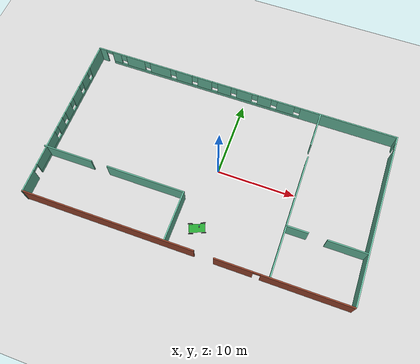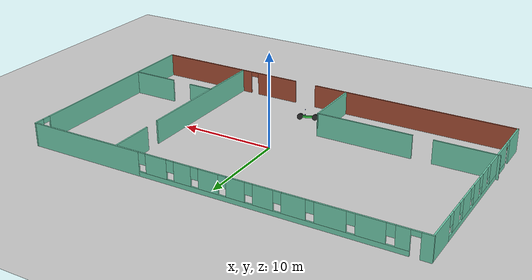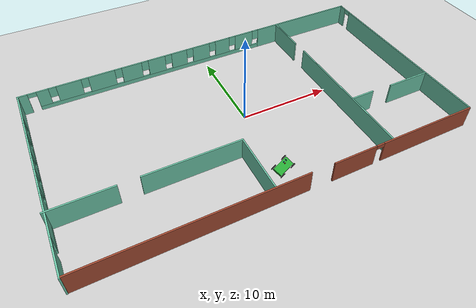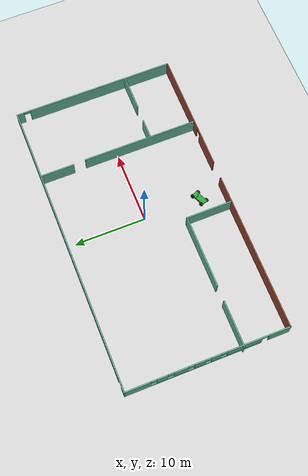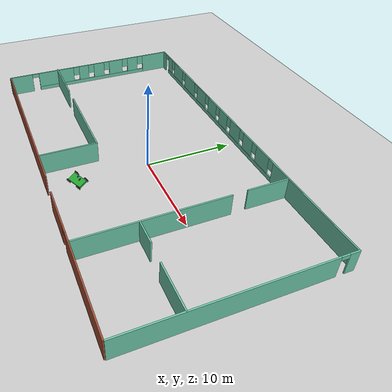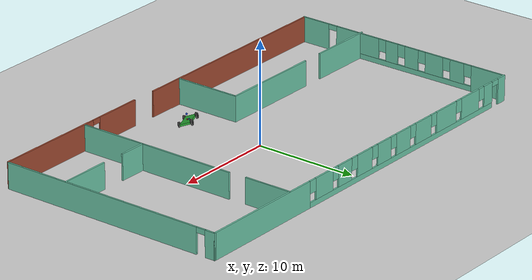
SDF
<sdf version="1.6">
 <world name="default">
  <model name="ground_plane">
   <static>1</static>
   <link name="link">
    <collision name="collision">
     <geometry><plane><normal>0 0 1</normal><size>100 100</size></plane></geometry>
     <surface>
      <contact><collide_bitmask>65535</collide_bitmask></contact>
      <friction><ode><mu>100</mu><mu2>50</mu2></ode></friction>
     </surface>
    </collision>
    <visual name="visual">
     <cast_shadows>0</cast_shadows>
     <geometry><plane><normal>0 0 1</normal><size>100 100</size></plane></geometry>
     <material>
      <script><uri>file://media/materials/scripts/gazebo.material</uri><name>Gazebo/Grey</name></script>
     </material>
    </visual>
   </link>
  </model>
  <model name="office">
   <pose>-0.6589 -0.171152 0 0 -0 0</pose>
   <link name="Wall_0">
    <pose>-20.5476 -0.068828 0 0 0 -1.5708</pose>
    <visual name="Wall_0_Visual_0">
     <pose>-9.5312 0 1.25 0 -0 0</pose>
     <geometry><box><size>3.4376 0.15 2.5</size></box></geometry>
     <material>
      <script><uri>file://media/materials/scripts/gazebo.material</uri><name>Gazebo/Grey</name></script>
      <ambient>0.435294 0.796078 0.67451 1</ambient>
     </material>
     <meta><layer>0</layer></meta>
    </visual>
    <collision name="Wall_0_Collision_0">
     <geometry><box><size>3.4376 0.15 2.5</size></box></geometry>
     <pose>-9.5312 0 1.25 0 -0 0</pose>
    </collision>
    <visual name="Wall_0_Visual_1">
     <pose>9.76077 0 1.25 0 -0 0</pose>
     <geometry><box><size>2.97847 0.15 2.5</size></box></geometry>
     <material>
      <script><uri>file://media/materials/scripts/gazebo.material</uri><name>Gazebo/Grey</name></script>
      <ambient>0.435294 0.796078 0.67451 1</ambient>
     </material>
     <meta><layer>0</layer></meta>
    </visual>
    <collision name="Wall_0_Collision_1">
     <geometry><box><size>2.97847 0.15 2.5</size></box></geometry>
     <pose>9.76077 0 1.25 0 -0 0</pose>
    </collision>
    <visual name="Wall_0_Visual_2">
     <pose>-0.220435 0 0.25 0 -0 0</pose>
     <geometry><box><size>15.1839 0.15 0.5</size></box></geometry>
     <material>
      <script><uri>file://media/materials/scripts/gazebo.material</uri><name>Gazebo/Grey</name></script>
      <ambient>0.435294 0.796078 0.67451 1</ambient>
     </material>
     <meta><layer>0</layer></meta>
    </visual>
    <collision name="Wall_0_Collision_2">
     <geometry><box><size>15.1839 0.15 0.5</size></box></geometry>
     <pose>-0.220435 0 0.25 0 -0 0</pose>
    </collision>
    <visual name="Wall_0_Visual_3">
     <pose>-6.24233 0 1.5 0 -0 0</pose>
     <geometry><box><size>1.54015 0.15 2</size></box></geometry>
     <material>
      <script><uri>file://media/materials/scripts/gazebo.material</uri><name>Gazebo/Grey</name></script>
      <ambient>0.435294 0.796078 0.67451 1</ambient>
     </material>
     <meta><layer>0</layer></meta>
    </visual>
    <collision name="Wall_0_Collision_3">
     <geometry><box><size>1.54015 0.15 2</size></box></geometry>
     <pose>-6.24233 0 1.5 0 -0 0</pose>
    </collision>
    <visual name="Wall_0_Visual_4">
     <pose>-3.69569 0 1.5 0 -0 0</pose>
     <geometry><box><size>1.95312 0.15 2</size></box></geometry>
     <material>
      <script><uri>file://media/materials/scripts/gazebo.material</uri><name>Gazebo/Grey</name></script>
      <ambient>0.435294 0.796078 0.67451 1</ambient>
     </material>
     <meta><layer>0</layer></meta>
    </visual>
    <collision name="Wall_0_Collision_4">
     <geometry><box><size>1.95312 0.15 2</size></box></geometry>
     <pose>-3.69569 0 1.5 0 -0 0</pose>
    </collision>
    <visual name="Wall_0_Visual_5">
     <pose>-1.17199 0 1.5 0 -0 0</pose>
     <geometry><box><size>1.49427 0.15 2</size></box></geometry>
     <material>
      <script><uri>file://media/materials/scripts/gazebo.material</uri><name>Gazebo/Grey</name></script>
      <ambient>0.435294 0.796078 0.67451 1</ambient>
     </material>
     <meta><layer>0</layer></meta>
    </visual>
    <collision name="Wall_0_Collision_5">
     <geometry><box><size>1.49427 0.15 2</size></box></geometry>
     <pose>-1.17199 0 1.5 0 -0 0</pose>
    </collision>
    <visual name="Wall_0_Visual_6">
     <pose>1.05344 0 1.5 0 -0 0</pose>
     <geometry><box><size>1.35661 0.15 2</size></box></geometry>
     <material>
      <script><uri>file://media/materials/scripts/gazebo.material</uri><name>Gazebo/Grey</name></script>
      <ambient>0.435294 0.796078 0.67451 1</ambient>
     </material>
     <meta><layer>0</layer></meta>
    </visual>
    <collision name="Wall_0_Collision_6">
     <geometry><box><size>1.35661 0.15 2</size></box></geometry>
     <pose>1.05344 0 1.5 0 -0 0</pose>
    </collision>
    <visual name="Wall_0_Visual_7">
     <pose>4.95164 0 1.5 0 -0 0</pose>
     <geometry><box><size>4.83978 0.15 2</size></box></geometry>
     <material>
      <script><uri>file://media/materials/scripts/gazebo.material</uri><name>Gazebo/Grey</name></script>
      <ambient>0.435294 0.796078 0.67451 1</ambient>
     </material>
     <meta><layer>0</layer></meta>
    </visual>
    <collision name="Wall_0_Collision_7">
     <geometry><box><size>4.83978 0.15 2</size></box></geometry>
     <pose>4.95164 0 1.5 0 -0 0</pose>
    </collision>
    <visual name="Wall_0_Visual_8">
     <pose>-7.4124 0 1.9 0 -0 0</pose>
     <geometry><box><size>0.8 0.15 1.2</size></box></geometry>
     <material>
      <script><uri>file://media/materials/scripts/gazebo.material</uri><name>Gazebo/Grey</name></script>
      <ambient>0.435294 0.796078 0.67451 1</ambient>
     </material>
     <meta><layer>0</layer></meta>
    </visual>
    <collision name="Wall_0_Collision_8">
     <geometry><box><size>0.8 0.15 1.2</size></box></geometry>
     <pose>-7.4124 0 1.9 0 -0 0</pose>
    </collision>
    <visual name="Wall_0_Visual_9">
     <pose>-5.07225 0 1.9 0 -0 0</pose>
     <geometry><box><size>0.8 0.15 1.2</size></box></geometry>
     <material>
      <script><uri>file://media/materials/scripts/gazebo.material</uri><name>Gazebo/Grey</name></script>
      <ambient>0.435294 0.796078 0.67451 1</ambient>
     </material>
     <meta><layer>0</layer></meta>
    </visual>
    <collision name="Wall_0_Collision_9">
     <geometry><box><size>0.8 0.15 1.2</size></box></geometry>
     <pose>-5.07225 0 1.9 0 -0 0</pose>
    </collision>
    <visual name="Wall_0_Visual_10">
     <pose>-2.31913 0 1.9 0 -0 0</pose>
     <geometry><box><size>0.8 0.15 1.2</size></box></geometry>
     <material>
      <script><uri>file://media/materials/scripts/gazebo.material</uri><name>Gazebo/Grey</name></script>
      <ambient>0.435294 0.796078 0.67451 1</ambient>
     </material>
     <meta><layer>0</layer></meta>
    </visual>
    <collision name="Wall_0_Collision_10">
     <geometry><box><size>0.8 0.15 1.2</size></box></geometry>
     <pose>-2.31913 0 1.9 0 -0 0</pose>
    </collision>
    <visual name="Wall_0_Visual_11">
     <pose>-0.024862 0 1.9 0 -0 0</pose>
     <geometry><box><size>0.8 0.15 1.2</size></box></geometry>
     <material>
      <script><uri>file://media/materials/scripts/gazebo.material</uri><name>Gazebo/Grey</name></script>
      <ambient>0.435294 0.796078 0.67451 1</ambient>
     </material>
     <meta><layer>0</layer></meta>
    </visual>
    <collision name="Wall_0_Collision_11">
     <geometry><box><size>0.8 0.15 1.2</size></box></geometry>
     <pose>-0.024862 0 1.9 0 -0 0</pose>
    </collision>
    <visual name="Wall_0_Visual_12">
     <pose>2.13175 0 1.9 0 -0 0</pose>
     <geometry><box><size>0.8 0.15 1.2</size></box></geometry>
     <material>
      <script><uri>file://media/materials/scripts/gazebo.material</uri><name>Gazebo/Grey</name></script>
      <ambient>0.435294 0.796078 0.67451 1</ambient>
     </material>
     <meta><layer>0</layer></meta>
    </visual>
    <collision name="Wall_0_Collision_12">
     <geometry><box><size>0.8 0.15 1.2</size></box></geometry>
     <pose>2.13175 0 1.9 0 -0 0</pose>
    </collision>
    <visual name="Wall_0_Visual_13">
     <pose>7.82153 0 2.25 0 -0 0</pose>
     <geometry><box><size>0.9 0.15 0.5</size></box></geometry>
     <material>
      <script><uri>file://media/materials/scripts/gazebo.material</uri><name>Gazebo/Grey</name></script>
      <ambient>0.435294 0.796078 0.67451 1</ambient>
     </material>
     <meta><layer>0</layer></meta>
    </visual>
    <collision name="Wall_0_Collision_13">
     <geometry><box><size>0.9 0.15 0.5</size></box></geometry>
     <pose>7.82153 0 2.25 0 -0 0</pose>
    </collision>
   </link>
   <link name="Wall_11">
    <collision name="Wall_11_Collision">
     <geometry><box><size>5 0.15 2.5</size></box></geometry>
     <pose>0 0 1.25 0 -0 0</pose>
    </collision>
    <visual name="Wall_11_Visual">
     <pose>0 0 1.25 0 -0 0</pose>
     <geometry><box><size>5 0.15 2.5</size></box></geometry>
     <material>
      <script><uri>file://media/materials/scripts/gazebo.material</uri><name>Gazebo/Grey</name></script>
      <ambient>0.435294 0.796078 0.67451 1</ambient>
     </material>
     <meta><layer>0</layer></meta>
    </visual>
    <pose>18.3103 -4.77016 0 0 -0 0</pose>
   </link>
   <link name="Wall_13">
    <collision name="Wall_13_Collision">
     <geometry><box><size>6.5 0.15 2.5</size></box></geometry>
     <pose>0 0 1.25 0 -0 0</pose>
    </collision>
    <visual name="Wall_13_Visual">
     <pose>0 0 1.25 0 -0 0</pose>
     <geometry><box><size>6.5 0.15 2.5</size></box></geometry>
     <material>
      <script><uri>file://media/materials/scripts/gazebo.material</uri><name>Gazebo/Grey</name></script>
      <ambient>0.435294 0.796078 0.67451 1</ambient>
     </material>
     <meta><layer>0</layer></meta>
    </visual>
    <pose>-17.6021 -4.77016 0 0 -0 0</pose>
   </link>
   <link name="Wall_15">
    <collision name="Wall_15_Collision">
     <geometry><box><size>10.25 0.15 2.5</size></box></geometry>
     <pose>0 0 1.25 0 -0 0</pose>
    </collision>
    <visual name="Wall_15_Visual">
     <pose>0 0 1.25 0 -0 0</pose>
     <geometry><box><size>10.25 0.15 2.5</size></box></geometry>
     <material>
      <script><uri>file://media/materials/scripts/gazebo.material</uri><name>Gazebo/Grey</name></script>
      <ambient>0.435294 0.796078 0.67451 1</ambient>
     </material>
     <meta><layer>0</layer></meta>
    </visual>
    <pose>-7.1465 -4.77016 0 0 -0 0</pose>
   </link>
   <link name="Wall_16">
    <collision name="Wall_16_Collision">
     <geometry><box><size>6.5 0.15 2.5</size></box></geometry>
     <pose>0 0 1.25 0 -0 0</pose>
    </collision>
    <visual name="Wall_16_Visual">
     <pose>0 0 1.25 0 -0 0</pose>
     <geometry><box><size>6.5 0.15 2.5</size></box></geometry>
     <material>
      <script><uri>file://media/materials/scripts/gazebo.material</uri><name>Gazebo/Grey</name></script>
      <ambient>0.435294 0.796078 0.67451 1</ambient>
     </material>
     <meta><layer>0</layer></meta>
    </visual>
    <pose>-2.0965 -7.94516 0 0 0 -1.5708</pose>
   </link>
   <link name="Wall_18">
    <collision name="Wall_18_Collision">
     <geometry><box><size>22.25 0.15 2.5</size></box></geometry>
     <pose>0 0 1.25 0 -0 0</pose>
    </collision>
    <visual name="Wall_18_Visual">
     <pose>0 0 1.25 0 -0 0</pose>
     <geometry><box><size>22.25 0.15 2.5</size></box></geometry>
     <material>
      <script><uri>file://media/materials/scripts/gazebo.material</uri><name>Gazebo/Bricks</name></script>
      <ambient>1 1 1 1</ambient>
     </material>
     <meta><layer>0</layer></meta>
    </visual>
    <pose>-9.49763 -11.1979 0 0 -0 0</pose>
   </link>
   <link name="Wall_2">
    <pose>20.7771 0.068828 0 0 -0 1.5708</pose>
    <visual name="Wall_2_Visual_0">
     <pose>-0.973723 0 1.25 0 -0 0</pose>
     <geometry><box><size>20.5526 0.15 2.5</size></box></geometry>
     <material>
      <script><uri>file://media/materials/scripts/gazebo.material</uri><name>Gazebo/Grey</name></script>
      <ambient>0.435294 0.796078 0.67451 1</ambient>
     </material>
     <meta><layer>0</layer></meta>
    </visual>
    <collision name="Wall_2_Collision_0">
     <geometry><box><size>20.5526 0.15 2.5</size></box></geometry>
     <pose>-0.973723 0 1.25 0 -0 0</pose>
    </collision>
    <visual name="Wall_2_Visual_1">
     <pose>10.7263 0 1.25 0 -0 0</pose>
     <geometry><box><size>1.04745 0.15 2.5</size></box></geometry>
     <material>
      <script><uri>file://media/materials/scripts/gazebo.material</uri><name>Gazebo/Grey</name></script>
      <ambient>0.435294 0.796078 0.67451 1</ambient>
     </material>
     <meta><layer>0</layer></meta>
    </visual>
    <collision name="Wall_2_Collision_1">
     <geometry><box><size>1.04745 0.15 2.5</size></box></geometry>
     <pose>10.7263 0 1.25 0 -0 0</pose>
    </collision>
    <visual name="Wall_2_Visual_2">
     <pose>9.75255 0 2.25 0 -0 0</pose>
     <geometry><box><size>0.9 0.15 0.5</size></box></geometry>
     <material>
      <script><uri>file://media/materials/scripts/gazebo.material</uri><name>Gazebo/Grey</name></script>
      <ambient>0.435294 0.796078 0.67451 1</ambient>
     </material>
     <meta><layer>0</layer></meta>
    </visual>
    <collision name="Wall_2_Collision_2">
     <geometry><box><size>0.9 0.15 0.5</size></box></geometry>
     <pose>9.75255 0 2.25 0 -0 0</pose>
    </collision>
   </link>
   <link name="Wall_22">
    <pose>12.4086 -11.24 0 0 -0 0</pose>
    <visual name="Wall_22_Visual_0">
     <pose>-5.9779 0 1.25 0 -0 0</pose>
     <geometry><box><size>4.79421 0.15 2.5</size></box></geometry>
     <material>
      <script><uri>file://media/materials/scripts/gazebo.material</uri><name>Gazebo/Bricks</name></script>
      <ambient>1 1 1 1</ambient>
     </material>
     <meta><layer>0</layer></meta>
    </visual>
    <collision name="Wall_22_Collision_0">
     <geometry><box><size>4.79421 0.15 2.5</size></box></geometry>
     <pose>-5.9779 0 1.25 0 -0 0</pose>
    </collision>
    <visual name="Wall_22_Visual_1">
     <pose>2.8471 0 1.25 0 -0 0</pose>
     <geometry><box><size>11.0558 0.15 2.5</size></box></geometry>
     <material>
      <script><uri>file://media/materials/scripts/gazebo.material</uri><name>Gazebo/Bricks</name></script>
      <ambient>1 1 1 1</ambient>
     </material>
     <meta><layer>0</layer></meta>
    </visual>
    <collision name="Wall_22_Collision_1">
     <geometry><box><size>11.0558 0.15 2.5</size></box></geometry>
     <pose>2.8471 0 1.25 0 -0 0</pose>
    </collision>
    <visual name="Wall_22_Visual_2">
     <pose>-3.13079 0 2.25 0 -0 0</pose>
     <geometry><box><size>0.9 0.15 0.5</size></box></geometry>
     <material>
      <script><uri>file://media/materials/scripts/gazebo.material</uri><name>Gazebo/Bricks</name></script>
      <ambient>1 1 1 1</ambient>
     </material>
     <meta><layer>0</layer></meta>
    </visual>
    <collision name="Wall_22_Collision_2">
     <geometry><box><size>0.9 0.15 0.5</size></box></geometry>
     <pose>-3.13079 0 2.25 0 -0 0</pose>
    </collision>
   </link>
   <link name="Wall_3">
    <pose>0.102057 11.2438 0 0 -0 3.14159</pose>
    <visual name="Wall_3_Visual_0">
     <pose>-14.3599 0 1.25 0 -0 0</pose>
     <geometry><box><size>12.7802 0.15 2.5</size></box></geometry>
     <material>
      <script><uri>file://media/materials/scripts/gazebo.material</uri><name>Gazebo/Grey</name></script>
      <ambient>0.435294 0.796078 0.67451 1</ambient>
     </material>
     <meta><layer>0</layer></meta>
    </visual>
    <collision name="Wall_3_Collision_0">
     <geometry><box><size>12.7802 0.15 2.5</size></box></geometry>
     <pose>-14.3599 0 1.25 0 -0 0</pose>
    </collision>
    <visual name="Wall_3_Visual_1">
     <pose>20.2136 0 1.25 0 -0 0</pose>
     <geometry><box><size>1.07276 0.15 2.5</size></box></geometry>
     <material>
      <script><uri>file://media/materials/scripts/gazebo.material</uri><name>Gazebo/Grey</name></script>
      <ambient>0.435294 0.796078 0.67451 1</ambient>
     </material>
     <meta><layer>0</layer></meta>
    </visual>
    <collision name="Wall_3_Collision_1">
     <geometry><box><size>1.07276 0.15 2.5</size></box></geometry>
     <pose>20.2136 0 1.25 0 -0 0</pose>
    </collision>
    <visual name="Wall_3_Visual_2">
     <pose>5.40372 0 0.25 0 -0 0</pose>
     <geometry><box><size>26.747 0.15 0.5</size></box></geometry>
     <material>
      <script><uri>file://media/materials/scripts/gazebo.material</uri><name>Gazebo/Grey</name></script>
      <ambient>0.435294 0.796078 0.67451 1</ambient>
     </material>
     <meta><layer>0</layer></meta>
    </visual>
    <collision name="Wall_3_Collision_2">
     <geometry><box><size>26.747 0.15 0.5</size></box></geometry>
     <pose>5.40372 0 0.25 0 -0 0</pose>
    </collision>
    <visual name="Wall_3_Visual_3">
     <pose>-5.98675 0 1.5 0 -0 0</pose>
     <geometry><box><size>2.36609 0.15 2</size></box></geometry>
     <material>
      <script><uri>file://media/materials/scripts/gazebo.material</uri><name>Gazebo/Grey</name></script>
      <ambient>0.435294 0.796078 0.67451 1</ambient>
     </material>
     <meta><layer>0</layer></meta>
    </visual>
    <collision name="Wall_3_Collision_3">
     <geometry><box><size>2.36609 0.15 2</size></box></geometry>
     <pose>-5.98675 0 1.5 0 -0 0</pose>
    </collision>
    <visual name="Wall_3_Visual_4">
     <pose>-3.07303 0 1.5 0 -0 0</pose>
     <geometry><box><size>1.86135 0.15 2</size></box></geometry>
     <material>
      <script><uri>file://media/materials/scripts/gazebo.material</uri><name>Gazebo/Grey</name></script>
      <ambient>0.435294 0.796078 0.67451 1</ambient>
     </material>
     <meta><layer>0</layer></meta>
    </visual>
    <collision name="Wall_3_Collision_4">
     <geometry><box><size>1.86135 0.15 2</size></box></geometry>
     <pose>-3.07303 0 1.5 0 -0 0</pose>
    </collision>
    <visual name="Wall_3_Visual_5">
     <pose>-0.274028 0 1.5 0 -0 0</pose>
     <geometry><box><size>2.13666 0.15 2</size></box></geometry>
     <material>
      <script><uri>file://media/materials/scripts/gazebo.material</uri><name>Gazebo/Grey</name></script>
      <ambient>0.435294 0.796078 0.67451 1</ambient>
     </material>
     <meta><layer>0</layer></meta>
    </visual>
    <collision name="Wall_3_Collision_5">
     <geometry><box><size>2.13666 0.15 2</size></box></geometry>
     <pose>-0.274028 0 1.5 0 -0 0</pose>
    </collision>
    <visual name="Wall_3_Visual_6">
     <pose>2.54792 0 1.5 0 -0 0</pose>
     <geometry><box><size>1.90724 0.15 2</size></box></geometry>
     <material>
      <script><uri>file://media/materials/scripts/gazebo.material</uri><name>Gazebo/Grey</name></script>
      <ambient>0.435294 0.796078 0.67451 1</ambient>
     </material>
     <meta><layer>0</layer></meta>
    </visual>
    <collision name="Wall_3_Collision_6">
     <geometry><box><size>1.90724 0.15 2</size></box></geometry>
     <pose>2.54792 0 1.5 0 -0 0</pose>
    </collision>
    <visual name="Wall_3_Visual_7">
     <pose>5.32398 0 1.5 0 -0 0</pose>
     <geometry><box><size>2.04489 0.15 2</size></box></geometry>
     <material>
      <script><uri>file://media/materials/scripts/gazebo.material</uri><name>Gazebo/Grey</name></script>
      <ambient>0.435294 0.796078 0.67451 1</ambient>
     </material>
     <meta><layer>0</layer></meta>
    </visual>
    <collision name="Wall_3_Collision_7">
     <geometry><box><size>2.04489 0.15 2</size></box></geometry>
     <pose>5.32398 0 1.5 0 -0 0</pose>
    </collision>
    <visual name="Wall_3_Visual_8">
     <pose>8.30653 0 1.5 0 -0 0</pose>
     <geometry><box><size>2.3202 0.15 2</size></box></geometry>
     <material>
      <script><uri>file://media/materials/scripts/gazebo.material</uri><name>Gazebo/Grey</name></script>
      <ambient>0.435294 0.796078 0.67451 1</ambient>
     </material>
     <meta><layer>0</layer></meta>
    </visual>
    <collision name="Wall_3_Collision_8">
     <geometry><box><size>2.3202 0.15 2</size></box></geometry>
     <pose>8.30653 0 1.5 0 -0 0</pose>
    </collision>
    <visual name="Wall_3_Visual_9">
     <pose>11.7479 0 1.5 0 -0 0</pose>
     <geometry><box><size>2.9626 0.15 2</size></box></geometry>
     <material>
      <script><uri>file://media/materials/scripts/gazebo.material</uri><name>Gazebo/Grey</name></script>
      <ambient>0.435294 0.796078 0.67451 1</ambient>
     </material>
     <meta><layer>0</layer></meta>
    </visual>
    <collision name="Wall_3_Collision_9">
     <geometry><box><size>2.9626 0.15 2</size></box></geometry>
     <pose>11.7479 0 1.5 0 -0 0</pose>
    </collision>
    <visual name="Wall_3_Visual_10">
     <pose>15.3729 0 1.5 0 -0 0</pose>
     <geometry><box><size>2.68729 0.15 2</size></box></geometry>
     <material>
      <script><uri>file://media/materials/scripts/gazebo.material</uri><name>Gazebo/Grey</name></script>
      <ambient>0.435294 0.796078 0.67451 1</ambient>
     </material>
     <meta><layer>0</layer></meta>
    </visual>
    <collision name="Wall_3_Collision_10">
     <geometry><box><size>2.68729 0.15 2</size></box></geometry>
     <pose>15.3729 0 1.5 0 -0 0</pose>
    </collision>
    <visual name="Wall_3_Visual_11">
     <pose>18.1469 0 1.5 0 -0 0</pose>
     <geometry><box><size>1.26073 0.15 2</size></box></geometry>
     <material>
      <script><uri>file://media/materials/scripts/gazebo.material</uri><name>Gazebo/Grey</name></script>
      <ambient>0.435294 0.796078 0.67451 1</ambient>
     </material>
     <meta><layer>0</layer></meta>
    </visual>
    <collision name="Wall_3_Collision_11">
     <geometry><box><size>1.26073 0.15 2</size></box></geometry>
     <pose>18.1469 0 1.5 0 -0 0</pose>
    </collision>
    <visual name="Wall_3_Visual_12">
     <pose>-7.5698 0 1.9 0 -0 0</pose>
     <geometry><box><size>0.8 0.15 1.2</size></box></geometry>
     <material>
      <script><uri>file://media/materials/scripts/gazebo.material</uri><name>Gazebo/Grey</name></script>
      <ambient>0.435294 0.796078 0.67451 1</ambient>
     </material>
     <meta><layer>0</layer></meta>
    </visual>
    <collision name="Wall_3_Collision_12">
     <geometry><box><size>0.8 0.15 1.2</size></box></geometry>
     <pose>-7.5698 0 1.9 0 -0 0</pose>
    </collision>
    <visual name="Wall_3_Visual_13">
     <pose>-4.40371 0 1.9 0 -0 0</pose>
     <geometry><box><size>0.8 0.15 1.2</size></box></geometry>
     <material>
      <script><uri>file://media/materials/scripts/gazebo.material</uri><name>Gazebo/Grey</name></script>
      <ambient>0.435294 0.796078 0.67451 1</ambient>
     </material>
     <meta><layer>0</layer></meta>
    </visual>
    <collision name="Wall_3_Collision_13">
     <geometry><box><size>0.8 0.15 1.2</size></box></geometry>
     <pose>-4.40371 0 1.9 0 -0 0</pose>
    </collision>
    <visual name="Wall_3_Visual_14">
     <pose>-1.74236 0 1.9 0 -0 0</pose>
     <geometry><box><size>0.8 0.15 1.2</size></box></geometry>
     <material>
      <script><uri>file://media/materials/scripts/gazebo.material</uri><name>Gazebo/Grey</name></script>
      <ambient>0.435294 0.796078 0.67451 1</ambient>
     </material>
     <meta><layer>0</layer></meta>
    </visual>
    <collision name="Wall_3_Collision_14">
     <geometry><box><size>0.8 0.15 1.2</size></box></geometry>
     <pose>-1.74236 0 1.9 0 -0 0</pose>
    </collision>
    <visual name="Wall_3_Visual_15">
     <pose>1.1943 0 1.9 0 -0 0</pose>
     <geometry><box><size>0.8 0.15 1.2</size></box></geometry>
     <material>
      <script><uri>file://media/materials/scripts/gazebo.material</uri><name>Gazebo/Grey</name></script>
      <ambient>0.435294 0.796078 0.67451 1</ambient>
     </material>
     <meta><layer>0</layer></meta>
    </visual>
    <collision name="Wall_3_Collision_15">
     <geometry><box><size>0.8 0.15 1.2</size></box></geometry>
     <pose>1.1943 0 1.9 0 -0 0</pose>
    </collision>
    <visual name="Wall_3_Visual_16">
     <pose>3.90154 0 1.9 0 -0 0</pose>
     <geometry><box><size>0.8 0.15 1.2</size></box></geometry>
     <material>
      <script><uri>file://media/materials/scripts/gazebo.material</uri><name>Gazebo/Grey</name></script>
      <ambient>0.435294 0.796078 0.67451 1</ambient>
     </material>
     <meta><layer>0</layer></meta>
    </visual>
    <collision name="Wall_3_Collision_16">
     <geometry><box><size>0.8 0.15 1.2</size></box></geometry>
     <pose>3.90154 0 1.9 0 -0 0</pose>
    </collision>
    <visual name="Wall_3_Visual_17">
     <pose>6.74643 0 1.9 0 -0 0</pose>
     <geometry><box><size>0.8 0.15 1.2</size></box></geometry>
     <material>
      <script><uri>file://media/materials/scripts/gazebo.material</uri><name>Gazebo/Grey</name></script>
      <ambient>0.435294 0.796078 0.67451 1</ambient>
     </material>
     <meta><layer>0</layer></meta>
    </visual>
    <collision name="Wall_3_Collision_17">
     <geometry><box><size>0.8 0.15 1.2</size></box></geometry>
     <pose>6.74643 0 1.9 0 -0 0</pose>
    </collision>
    <visual name="Wall_3_Visual_18">
     <pose>9.86663 0 1.9 0 -0 0</pose>
     <geometry><box><size>0.8 0.15 1.2</size></box></geometry>
     <material>
      <script><uri>file://media/materials/scripts/gazebo.material</uri><name>Gazebo/Grey</name></script>
      <ambient>0.435294 0.796078 0.67451 1</ambient>
     </material>
     <meta><layer>0</layer></meta>
    </visual>
    <collision name="Wall_3_Collision_18">
     <geometry><box><size>0.8 0.15 1.2</size></box></geometry>
     <pose>9.86663 0 1.9 0 -0 0</pose>
    </collision>
    <visual name="Wall_3_Visual_19">
     <pose>13.6292 0 1.9 0 -0 0</pose>
     <geometry><box><size>0.8 0.15 1.2</size></box></geometry>
     <material>
      <script><uri>file://media/materials/scripts/gazebo.material</uri><name>Gazebo/Grey</name></script>
      <ambient>0.435294 0.796078 0.67451 1</ambient>
     </material>
     <meta><layer>0</layer></meta>
    </visual>
    <collision name="Wall_3_Collision_19">
     <geometry><box><size>0.8 0.15 1.2</size></box></geometry>
     <pose>13.6292 0 1.9 0 -0 0</pose>
    </collision>
    <visual name="Wall_3_Visual_20">
     <pose>17.1165 0 1.9 0 -0 0</pose>
     <geometry><box><size>0.8 0.15 1.2</size></box></geometry>
     <material>
      <script><uri>file://media/materials/scripts/gazebo.material</uri><name>Gazebo/Grey</name></script>
      <ambient>0.435294 0.796078 0.67451 1</ambient>
     </material>
     <meta><layer>0</layer></meta>
    </visual>
    <collision name="Wall_3_Collision_20">
     <geometry><box><size>0.8 0.15 1.2</size></box></geometry>
     <pose>17.1165 0 1.9 0 -0 0</pose>
    </collision>
    <visual name="Wall_3_Visual_21">
     <pose>19.2272 0 2.25 0 -0 0</pose>
     <geometry><box><size>0.9 0.15 0.5</size></box></geometry>
     <material>
      <script><uri>file://media/materials/scripts/gazebo.material</uri><name>Gazebo/Grey</name></script>
      <ambient>0.435294 0.796078 0.67451 1</ambient>
     </material>
     <meta><layer>0</layer></meta>
    </visual>
    <collision name="Wall_3_Collision_21">
     <geometry><box><size>0.9 0.15 0.5</size></box></geometry>
     <pose>19.2272 0 2.25 0 -0 0</pose>
    </collision>
   </link>
   <link name="Wall_5">
    <collision name="Wall_5_Collision">
     <geometry><box><size>4.75 0.15 2.5</size></box></geometry>
     <pose>0 0 1.25 0 -0 0</pose>
    </collision>
    <visual name="Wall_5_Visual">
     <pose>0 0 1.25 0 -0 0</pose>
     <geometry><box><size>4.75 0.15 2.5</size></box></geometry>
     <material>
      <script><uri>file://media/materials/scripts/gazebo.material</uri><name>Gazebo/Grey</name></script>
      <ambient>0.435294 0.796078 0.67451 1</ambient>
     </material>
     <meta><layer>0</layer></meta>
    </visual>
    <pose>10.7462 8.89794 0 0 0 -1.5708</pose>
   </link>
   <link name="Wall_7">
    <collision name="Wall_7_Collision">
     <geometry><box><size>16 0.15 2.5</size></box></geometry>
     <pose>0 0 1.25 0 -0 0</pose>
    </collision>
    <visual name="Wall_7_Visual">
     <pose>0 0 1.25 0 -0 0</pose>
     <geometry><box><size>16 0.15 2.5</size></box></geometry>
     <material>
      <script><uri>file://media/materials/scripts/gazebo.material</uri><name>Gazebo/Grey</name></script>
      <ambient>0.435294 0.796078 0.67451 1</ambient>
     </material>
     <meta><layer>0</layer></meta>
    </visual>
    <pose>10.8379 -3.15101 0 0 0 -1.5708</pose>
   </link>
   <link name="Wall_9">
    <collision name="Wall_9_Collision">
     <geometry><box><size>2.75 0.15 2.5</size></box></geometry>
     <pose>0 0 1.25 0 -0 0</pose>
    </collision>
    <visual name="Wall_9_Visual">
     <pose>0 0 1.25 0 -0 0</pose>
     <geometry><box><size>2.75 0.15 2.5</size></box></geometry>
     <material>
      <script><uri>file://media/materials/scripts/gazebo.material</uri><name>Gazebo/Grey</name></script>
      <ambient>0.435294 0.796078 0.67451 1</ambient>
     </material>
     <meta><layer>0</layer></meta>
    </visual>
    <pose>12.1838 -4.67839 0 0 -0 0</pose>
   </link>
   <static>1</static>
  </model>
  <model name="car">
   <link name="chassis">
    <pose>0 0 0.3 0 -0 0</pose>
    <collision name="collision"><geometry><box><size>2 1 0.2</size></box></geometry></collision>
    <visual name="visual">
     <geometry><box><size>2 1 0.2</size></box></geometry>
     <material>
      <script><uri>file://media/materials/scripts/gazebo.material</uri><name>Gazebo/Green</name></script>
     </material>
    </visual>
    <inertial>
     <inertia><ixx>1</ixx><ixy>0</ixy><ixz>0</ixz><iyy>1</iyy><iyz>0</iyz><izz>1</izz></inertia>
     <mass>1</mass>
    </inertial>
   </link>
   <link name="front_left_wheel">
    <pose>0.8 0.6 0.3 -0 1.5707 1.5707</pose>
    <collision name="collision">
     <geometry><cylinder><radius>0.3</radius><length>0.1</length></cylinder></geometry>
    </collision>
    <visual name="visual">
     <geometry><cylinder><radius>0.3</radius><length>0.1</length></cylinder></geometry>
     <material>
      <script><uri>file://media/materials/scripts/gazebo.material</uri><name>Gazebo/Black</name></script>
     </material>
    </visual>
    <inertial>
     <inertia><ixx>1</ixx><ixy>0</ixy><ixz>0</ixz><iyy>1</iyy><iyz>0</iyz><izz>1</izz></inertia>
     <mass>1</mass>
    </inertial>
   </link>
   <link name="front_right_wheel">
    <pose>0.8 -0.6 0.3 -0 1.5707 1.5707</pose>
    <collision name="collision">
     <geometry><cylinder><radius>0.3</radius><length>0.1</length></cylinder></geometry>
    </collision>
    <visual name="visual">
     <geometry><cylinder><radius>0.3</radius><length>0.1</length></cylinder></geometry>
     <material>
      <script><uri>file://media/materials/scripts/gazebo.material</uri><name>Gazebo/Black</name></script>
     </material>
    </visual>
    <inertial>
     <inertia><ixx>1</ixx><ixy>0</ixy><ixz>0</ixz><iyy>1</iyy><iyz>0</iyz><izz>1</izz></inertia>
     <mass>1</mass>
    </inertial>
   </link>
   <link name="back_right_wheel">
    <pose>-0.8 -0.6 0.3 -0 1.5707 1.5707</pose>
    <collision name="collision">
     <geometry><cylinder><radius>0.3</radius><length>0.1</length></cylinder></geometry>
    </collision>
    <visual name="visual">
     <geometry><cylinder><radius>0.3</radius><length>0.1</length></cylinder></geometry>
     <material>
      <script><uri>file://media/materials/scripts/gazebo.material</uri><name>Gazebo/Black</name></script>
     </material>
    </visual>
    <inertial>
     <inertia><ixx>1</ixx><ixy>0</ixy><ixz>0</ixz><iyy>1</iyy><iyz>0</iyz><izz>1</izz></inertia>
     <mass>1</mass>
    </inertial>
   </link>
   <link name="back_left_wheel">
    <pose>-0.8 0.6 0.3 -0 1.5707 1.5707</pose>
    <collision name="collision">
     <geometry><cylinder><radius>0.3</radius><length>0.1</length></cylinder></geometry>
    </collision>
    <visual name="visual">
     <geometry><cylinder><radius>0.3</radius><length>0.1</length></cylinder></geometry>
     <material>
      <script><uri>file://media/materials/scripts/gazebo.material</uri><name>Gazebo/Black</name></script>
     </material>
    </visual>
    <inertial>
     <inertia><ixx>1</ixx><ixy>0</ixy><ixz>0</ixz><iyy>1</iyy><iyz>0</iyz><izz>1</izz></inertia>
     <mass>1</mass>
    </inertial>
   </link>
   <link name="gas_pedal">
    <pose>0.3 0.1 0.5 0 -0 0</pose>
    <collision name="collision"><geometry><box><size>0.1 0.1 0.1</size></box></geometry></collision>
    <visual name="visual">
     <geometry><box><size>0.1 0.1 0.1</size></box></geometry>
     <material>
      <script><uri>file://media/materials/scripts/gazebo.material</uri><name>Gazebo/Red</name></script>
     </material>
    </visual>
    <inertial>
     <inertia><ixx>1</ixx><ixy>0</ixy><ixz>0</ixz><iyy>1</iyy><iyz>0</iyz><izz>1</izz></inertia>
     <mass>1</mass>
    </inertial>
   </link>
   <link name="brake_pedal">
    <pose>0.3 0.25 0.5 0 -0 0</pose>
    <collision name="collision"><geometry><box><size>0.1 0.1 0.1</size></box></geometry></collision>
    <visual name="visual">
     <geometry><box><size>0.1 0.1 0.1</size></box></geometry>
     <material>
      <script><uri>file://media/materials/scripts/gazebo.material</uri><name>Gazebo/Blue</name></script>
     </material>
    </visual>
    <inertial>
     <inertia><ixx>1</ixx><ixy>0</ixy><ixz>0</ixz><iyy>1</iyy><iyz>0</iyz><izz>1</izz></inertia>
     <mass>1</mass>
    </inertial>
   </link>
   <link name="steering_wheel">
    <pose>0.3 0.2 1 0 1.5707 0</pose>
    <collision name="collision">
     <geometry><cylinder><radius>0.1</radius><length>0.01</length></cylinder></geometry>
    </collision>
    <visual name="visual">
     <geometry><cylinder><radius>0.1</radius><length>0.01</length></cylinder></geometry>
     <material>
      <script><uri>file://media/materials/scripts/gazebo.material</uri><name>Gazebo/Blue</name></script>
     </material>
    </visual>
    <inertial>
     <inertia><ixx>1</ixx><ixy>0</ixy><ixz>0</ixz><iyy>1</iyy><iyz>0</iyz><izz>1</izz></inertia>
     <mass>1</mass>
    </inertial>
   </link>
   <joint name="gas_joint" type="prismatic">
    <parent>chassis</parent>
    <child>gas_pedal</child>
    <axis>
     <xyz>1 0 0</xyz>
     <limit><lower>0</lower><upper>0.2</upper></limit>
     <use_parent_model_frame>1</use_parent_model_frame>
     <dynamics><spring_reference>0</spring_reference><spring_stiffness>0</spring_stiffness></dynamics>
    </axis>
   </joint>
   <joint name="brake_joint" type="prismatic">
    <parent>chassis</parent>
    <child>brake_pedal</child>
    <axis>
     <xyz>1 0 0</xyz>
     <limit><lower>0</lower><upper>0.2</upper></limit>
     <use_parent_model_frame>1</use_parent_model_frame>
     <dynamics><spring_reference>0</spring_reference><spring_stiffness>0</spring_stiffness></dynamics>
    </axis>
   </joint>
   <joint name="steering_joint" type="revolute">
    <parent>chassis</parent>
    <child>steering_wheel</child>
    <axis>
     <xyz>1 0 0</xyz>
     <limit><lower>-7.853</lower><upper>7.853</upper></limit>
     <use_parent_model_frame>1</use_parent_model_frame>
     <dynamics><spring_reference>0</spring_reference><spring_stiffness>0</spring_stiffness></dynamics>
    </axis>
   </joint>
   <joint name="front_left_joint" type="revolute2">
    <parent>chassis</parent>
    <child>front_left_wheel</child>
    <axis>
     <xyz>0 0 1</xyz>
     <limit><lower>8.67264e-06</lower><upper>8.67264e-06</upper></limit>
     <use_parent_model_frame>1</use_parent_model_frame>
     <dynamics><spring_reference>0</spring_reference><spring_stiffness>0</spring_stiffness></dynamics>
    </axis>
    <axis2>
     <xyz>0 1 0</xyz>
     <use_parent_model_frame>1</use_parent_model_frame>
     <dynamics><spring_reference>0</spring_reference><spring_stiffness>0</spring_stiffness></dynamics>
    </axis2>
    <physics><ode><limit><cfm>0</cfm><erp>0.9</erp></limit></ode></physics>
   </joint>
   <joint name="front_right_joint" type="revolute2">
    <parent>chassis</parent>
    <child>front_right_wheel</child>
    <axis>
     <xyz>0 0 1</xyz>
     <limit><lower>8.67264e-06</lower><upper>8.67264e-06</upper></limit>
     <use_parent_model_frame>1</use_parent_model_frame>
     <dynamics><spring_reference>0</spring_reference><spring_stiffness>0</spring_stiffness></dynamics>
    </axis>
    <axis2>
     <xyz>0 1 0</xyz>
     <use_parent_model_frame>1</use_parent_model_frame>
     <dynamics><spring_reference>0</spring_reference><spring_stiffness>0</spring_stiffness></dynamics>
    </axis2>
    <physics><ode><limit><cfm>0</cfm><erp>0.9</erp></limit></ode></physics>
   </joint>
   <joint name="back_right_joint" type="revolute2">
    <parent>chassis</parent>
    <child>back_right_wheel</child>
    <axis>
     <xyz>0 0 1</xyz>
     <limit><lower>0</lower><upper>0</upper></limit>
     <use_parent_model_frame>1</use_parent_model_frame>
     <dynamics><spring_reference>0</spring_reference><spring_stiffness>0</spring_stiffness></dynamics>
    </axis>
    <axis2>
     <xyz>0 1 0</xyz>
     <use_parent_model_frame>1</use_parent_model_frame>
     <dynamics><spring_reference>0</spring_reference><spring_stiffness>0</spring_stiffness></dynamics>
    </axis2>
    <physics><ode><limit><cfm>0</cfm><erp>0.9</erp></limit></ode></physics>
   </joint>
   <joint name="back_left_joint" type="revolute2">
    <parent>chassis</parent>
    <child>back_left_wheel</child>
    <axis>
     <xyz>0 0 1</xyz>
     <limit><lower>0</lower><upper>0</upper></limit>
     <use_parent_model_frame>1</use_parent_model_frame>
     <dynamics><spring_reference>0</spring_reference><spring_stiffness>0</spring_stiffness></dynamics>
    </axis>
    <axis2>
     <xyz>0 1 0</xyz>
     <use_parent_model_frame>1</use_parent_model_frame>
     <dynamics><spring_reference>0</spring_reference><spring_stiffness>0</spring_stiffness></dynamics>
    </axis2>
    <physics><ode><limit><cfm>0</cfm><erp>0.9</erp></limit></ode></physics>
   </joint>
   <plugin name="vehicle" filename="libVehiclePlugin.so">
    <front_left>front_left_joint</front_left>
    <front_right>front_right_joint</front_right>
    <back_left>back_left_joint</back_left>
    <back_right>back_right_joint</back_right>
    <gas>gas_joint</gas>
    <brake>brake_joint</brake>
    <steering>steering_joint</steering>
    <front_power>10</front_power>
    <rear_power>10</rear_power>
    <tire_angle_range>0.5</tire_angle_range>
    <max_speed>10</max_speed>
    <aero_load>0.1</aero_load>
   </plugin>
   <pose>0.022632 -7.96229 -0.002614 0.35305 -0.016502 0.405366</pose>
  </model>
 </world>
</sdf>
